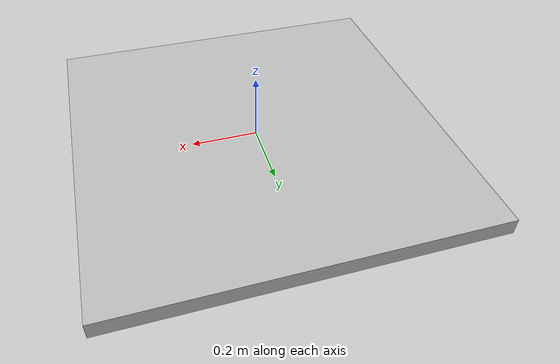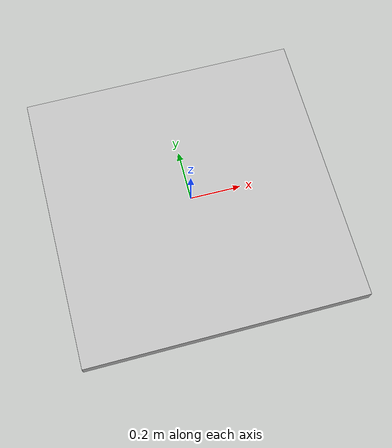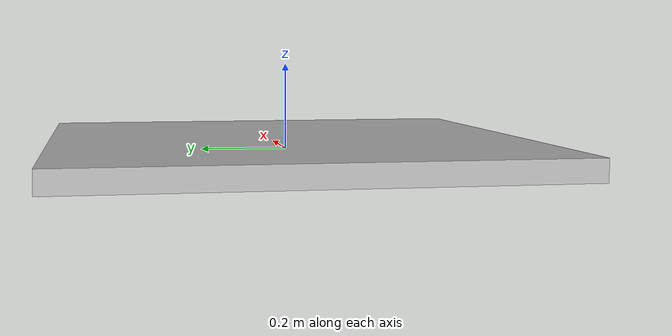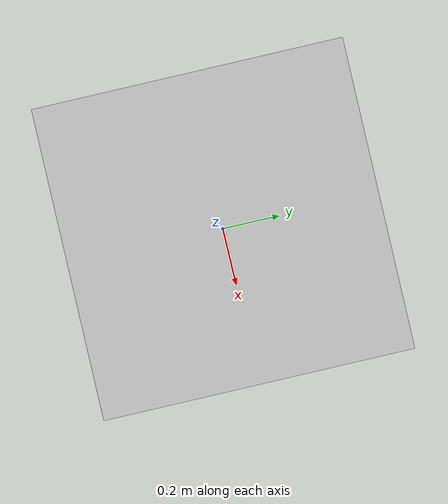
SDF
<?xml version='1.0'?>
<sdf version='1.6'>
  <model name='station'>
		<static>1</static>
    <link name='link'>
      <pose frame=''>0 0 0.0 0 -0 0</pose>

      <visual name='visual'>
        <geometry>
          <box>
            <size>1.1 1.1 .05</size>
          </box>
        </geometry>
      </visual>
     </link>
  </model>
</sdf>
